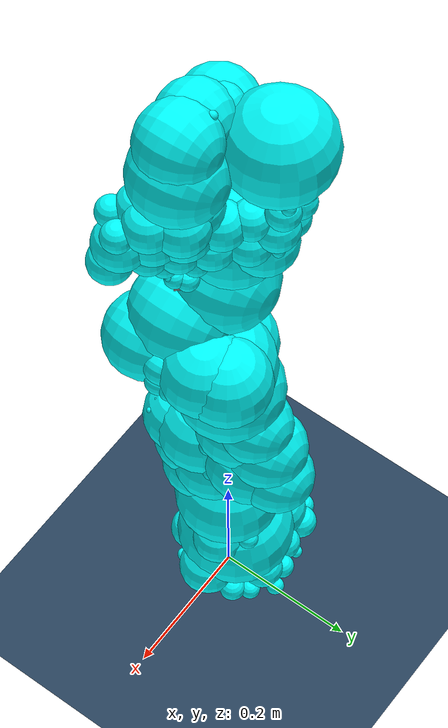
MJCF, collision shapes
<mujoco model="panda scene">
  <compiler angle="radian" meshdir="assets/" />
  <option integrator="implicitfast" />
  <size nkey="1" />
  <visual>
    <global azimuth="120" elevation="-20" />
    <headlight ambient="0.3 0.3 0.3" diffuse="0.6 0.6 0.6" specular="0 0 0" />
    <rgba haze="0.15 0.25 0.35 1" />
  </visual>
  <statistic extent="1" center="0.3 0 0.4" />
  <default>
    <default class="panda">
      <material shininess="0.25" />
      <joint range="-2.8973 2.8973" armature="0.1" damping="1" />
      <general ctrlrange="-2.8973 2.8973" forcerange="-87 87" biastype="affine" />
      <default class="finger">
        <joint type="slide" range="0 0.04" />
      </default>
      <default class="visual">
        <geom type="mesh" contype="0" conaffinity="0" group="2" />
      </default>
      <default class="collision">
        <geom type="mesh" group="3" />
        <default class="fingertip_pad_collision_1">
          <geom size="0.0085 0.004 0.0085" type="box" />
        </default>
        <default class="fingertip_pad_collision_2">
          <geom size="0.003 0.002 0.003" type="box" />
        </default>
        <default class="fingertip_pad_collision_3">
          <geom size="0.003 0.002 0.003" type="box" />
        </default>
        <default class="fingertip_pad_collision_4">
          <geom size="0.003 0.002 0.0035" type="box" />
        </default>
        <default class="fingertip_pad_collision_5">
          <geom size="0.003 0.002 0.0035" type="box" />
        </default>
      </default>
    </default>
  </default>
  <asset>
    <texture type="skybox" colorspace="auto" builtin="gradient" rgb1="0.3 0.5 0.7" rgb2="0 0 0" width="512" height="3072" />
    <texture type="2d" colorspace="auto" name="groundplane" builtin="checker" mark="edge" rgb1="0.2 0.3 0.4" rgb2="0.1 0.2 0.3" markrgb="0.8 0.8 0.8" width="300" height="300" />
    <material name="white" class="panda" />
    <material name="off_white" class="panda" rgba="0.901961 0.921569 0.929412 1" />
    <material name="black" class="panda" rgba="0.25 0.25 0.25 1" />
    <material name="green" class="panda" rgba="0 1 0 1" />
    <material name="light_blue" class="panda" rgba="0.039216 0.541176 0.780392 1" />
    <material name="groundplane" texture="groundplane" texuniform="true" texrepeat="5 5" reflectance="0.2" />
    <mesh name="link0_c" content_type="model/stl" file="link0.stl" />
    <mesh name="link1_c" content_type="model/stl" file="link1.stl" />
    <mesh name="link2_c" content_type="model/stl" file="link2.stl" />
    <mesh name="link3_c" content_type="model/stl" file="link3.stl" />
    <mesh name="link4_c" content_type="model/stl" file="link4.stl" />
    <mesh name="link5_c0" content_type="model/obj" file="link5_collision_0.obj" />
    <mesh name="link5_c1" content_type="model/obj" file="link5_collision_1.obj" />
    <mesh name="link5_c2" content_type="model/obj" file="link5_collision_2.obj" />
    <mesh name="link6_c" content_type="model/stl" file="link6.stl" />
    <mesh name="link7_c" content_type="model/stl" file="link7.stl" />
    <mesh name="hand_c" content_type="model/stl" file="hand.stl" />
    <mesh name="link0_0" content_type="model/obj" file="link0_0.obj" />
    <mesh name="link0_1" content_type="model/obj" file="link0_1.obj" />
    <mesh name="link0_2" content_type="model/obj" file="link0_2.obj" />
    <mesh name="link0_3" content_type="model/obj" file="link0_3.obj" />
    <mesh name="link0_4" content_type="model/obj" file="link0_4.obj" />
    <mesh name="link0_5" content_type="model/obj" file="link0_5.obj" />
    <mesh name="link0_7" content_type="model/obj" file="link0_7.obj" />
    <mesh name="link0_8" content_type="model/obj" file="link0_8.obj" />
    <mesh name="link0_9" content_type="model/obj" file="link0_9.obj" />
    <mesh name="link0_10" content_type="model/obj" file="link0_10.obj" />
    <mesh name="link0_11" content_type="model/obj" file="link0_11.obj" />
    <mesh name="link1" content_type="model/obj" file="link1.obj" />
    <mesh name="link2" content_type="model/obj" file="link2.obj" />
    <mesh name="link3_0" content_type="model/obj" file="link3_0.obj" />
    <mesh name="link3_1" content_type="model/obj" file="link3_1.obj" />
    <mesh name="link3_2" content_type="model/obj" file="link3_2.obj" />
    <mesh name="link3_3" content_type="model/obj" file="link3_3.obj" />
    <mesh name="link4_0" content_type="model/obj" file="link4_0.obj" />
    <mesh name="link4_1" content_type="model/obj" file="link4_1.obj" />
    <mesh name="link4_2" content_type="model/obj" file="link4_2.obj" />
    <mesh name="link4_3" content_type="model/obj" file="link4_3.obj" />
    <mesh name="link5_0" content_type="model/obj" file="link5_0.obj" />
    <mesh name="link5_1" content_type="model/obj" file="link5_1.obj" />
    <mesh name="link5_2" content_type="model/obj" file="link5_2.obj" />
    <mesh name="link6_0" content_type="model/obj" file="link6_0.obj" />
    <mesh name="link6_1" content_type="model/obj" file="link6_1.obj" />
    <mesh name="link6_2" content_type="model/obj" file="link6_2.obj" />
    <mesh name="link6_3" content_type="model/obj" file="link6_3.obj" />
    <mesh name="link6_4" content_type="model/obj" file="link6_4.obj" />
    <mesh name="link6_5" content_type="model/obj" file="link6_5.obj" />
    <mesh name="link6_6" content_type="model/obj" file="link6_6.obj" />
    <mesh name="link6_7" content_type="model/obj" file="link6_7.obj" />
    <mesh name="link6_8" content_type="model/obj" file="link6_8.obj" />
    <mesh name="link6_9" content_type="model/obj" file="link6_9.obj" />
    <mesh name="link6_10" content_type="model/obj" file="link6_10.obj" />
    <mesh name="link6_11" content_type="model/obj" file="link6_11.obj" />
    <mesh name="link6_12" content_type="model/obj" file="link6_12.obj" />
    <mesh name="link6_13" content_type="model/obj" file="link6_13.obj" />
    <mesh name="link6_14" content_type="model/obj" file="link6_14.obj" />
    <mesh name="link6_15" content_type="model/obj" file="link6_15.obj" />
    <mesh name="link6_16" content_type="model/obj" file="link6_16.obj" />
    <mesh name="link7_0" content_type="model/obj" file="link7_0.obj" />
    <mesh name="link7_1" content_type="model/obj" file="link7_1.obj" />
    <mesh name="link7_2" content_type="model/obj" file="link7_2.obj" />
    <mesh name="link7_3" content_type="model/obj" file="link7_3.obj" />
    <mesh name="link7_4" content_type="model/obj" file="link7_4.obj" />
    <mesh name="link7_5" content_type="model/obj" file="link7_5.obj" />
    <mesh name="link7_6" content_type="model/obj" file="link7_6.obj" />
    <mesh name="link7_7" content_type="model/obj" file="link7_7.obj" />
    <mesh name="hand_0" content_type="model/obj" file="hand_0.obj" />
    <mesh name="hand_1" content_type="model/obj" file="hand_1.obj" />
    <mesh name="hand_2" content_type="model/obj" file="hand_2.obj" />
    <mesh name="hand_3" content_type="model/obj" file="hand_3.obj" />
    <mesh name="hand_4" content_type="model/obj" file="hand_4.obj" />
    <mesh name="finger_0" content_type="model/obj" file="finger_0.obj" />
    <mesh name="finger_1" content_type="model/obj" file="finger_1.obj" />
  </asset>
  <worldbody>
    <geom name="floor" size="0 0 0.05" type="plane" material="groundplane" />
    <light name="top" pos="0 0 2" dir="0 0 -1" mode="trackcom" />
    <light pos="0 0 1.5" dir="0 0 -1" type="directional" />
    <body name="link0" childclass="panda">
      <inertial pos="-0.041018 -0.00014 0.049974" quat="0.00630474 0.751245 0.00741774 0.659952" mass="0.629769" diaginertia="0.00430465 0.00387984 0.00313051" />
      <geom class="visual" material="off_white" mesh="link0_0" />
      <geom class="visual" material="black" mesh="link0_1" />
      <geom class="visual" material="off_white" mesh="link0_2" />
      <geom class="visual" material="black" mesh="link0_3" />
      <geom class="visual" material="off_white" mesh="link0_4" />
      <geom class="visual" material="black" mesh="link0_5" />
      <geom class="visual" material="white" mesh="link0_7" />
      <geom class="visual" material="white" mesh="link0_8" />
      <geom class="visual" material="black" mesh="link0_9" />
      <geom class="visual" material="off_white" mesh="link0_10" />
      <geom class="visual" material="white" mesh="link0_11" />
      <geom class="collision" mesh="link0_c" contype="0" conaffinity="0" />
      <body name="link1" pos="0 0 0.333">
        <inertial pos="0.003875 0.002081 -0.04762" quat="0.711549 0.00634377 -0.0131124 0.702485" mass="4.97068" diaginertia="0.707137 0.703435 0.00852456" />
        <joint name="joint1" pos="0 0 0" axis="0 0 1" />
        <geom class="visual" material="white" mesh="link1" />
        <geom class="collision" mesh="link1_c" contype="0" conaffinity="0" />
        <body name="link2" quat="0.707107 -0.707107 0 0">
          <inertial pos="-0.003141 -0.02872 0.003495" quat="-0.168175 0.828366 -0.122878 0.520027" mass="0.646926" diaginertia="0.0310326 0.0283001 0.00273425" />
          <joint name="joint2" pos="0 0 0" axis="0 0 1" range="-1.7628 1.7628" />
          <geom class="visual" material="white" mesh="link2" />
          <geom class="collision" mesh="link2_c" contype="0" conaffinity="0" />
          <body name="link3" pos="0 -0.316 0" quat="0.707107 0.707107 0 0">
            <inertial pos="0.027518 0.039252 -0.066502" quat="0.662769 -0.00678331 0.252053 0.705096" mass="3.2286" diaginertia="0.0415014 0.0414793 0.00124635" />
            <joint name="joint3" pos="0 0 0" axis="0 0 1" />
            <geom class="visual" material="white" mesh="link3_0" />
            <geom class="visual" material="white" mesh="link3_1" />
            <geom class="visual" material="white" mesh="link3_2" />
            <geom class="visual" material="black" mesh="link3_3" />
            <geom class="collision" mesh="link3_c" contype="0" conaffinity="0" />
            <body name="link4" pos="0.0825 0 0" quat="0.707107 0.707107 0 0">
              <inertial pos="-0.05317 0.104419 0.027454" quat="0.65058 0.529822 -0.0962034 0.535518" mass="3.5879" diaginertia="0.0349596 0.0281483 0.0106201" />
              <joint name="joint4" pos="0 0 0" axis="0 0 1" range="-3.0718 -0.0698" />
              <geom class="visual" material="white" mesh="link4_0" />
              <geom class="visual" material="white" mesh="link4_1" />
              <geom class="visual" material="black" mesh="link4_2" />
              <geom class="visual" material="white" mesh="link4_3" />
              <geom class="collision" mesh="link4_c" contype="0" conaffinity="0" />
              <body name="link5" pos="-0.0825 0.384 0" quat="0.707107 -0.707107 0 0">
                <inertial pos="-0.011953 0.041065 -0.038437" quat="0.987313 -0.0121954 0.0719187 -0.141037" mass="1.22595" diaginertia="0.0367625 0.0288531 0.00803437" />
                <joint name="joint5" pos="0 0 0" axis="0 0 1" />
                <geom class="visual" material="black" mesh="link5_0" />
                <geom class="visual" material="white" mesh="link5_1" />
                <geom class="visual" material="white" mesh="link5_2" />
                <geom class="collision" mesh="link5_c0" contype="0" conaffinity="0" />
                <geom class="collision" mesh="link5_c1" contype="0" conaffinity="0" />
                <geom class="collision" mesh="link5_c2" contype="0" conaffinity="0" />
                <body name="link6" quat="0.707107 0.707107 0 0">
                  <inertial pos="0.060149 -0.014117 -0.010517" quat="0.101075 0.59332 0.0287227 0.798079" mass="1.66656" diaginertia="0.00584276 0.00431037 0.00159787" />
                  <joint name="joint6" pos="0 0 0" axis="0 0 1" range="-0.0175 3.7525" />
                  <geom class="visual" material="off_white" mesh="link6_0" />
                  <geom class="visual" material="white" mesh="link6_1" />
                  <geom class="visual" material="black" mesh="link6_2" />
                  <geom class="visual" material="white" mesh="link6_3" />
                  <geom class="visual" material="white" mesh="link6_4" />
                  <geom class="visual" material="white" mesh="link6_5" />
                  <geom class="visual" material="white" mesh="link6_6" />
                  <geom class="visual" material="light_blue" mesh="link6_7" />
                  <geom class="visual" material="light_blue" mesh="link6_8" />
                  <geom class="visual" material="black" mesh="link6_9" />
                  <geom class="visual" material="black" mesh="link6_10" />
                  <geom class="visual" material="white" mesh="link6_11" />
                  <geom class="visual" material="green" mesh="link6_12" />
                  <geom class="visual" material="white" mesh="link6_13" />
                  <geom class="visual" material="black" mesh="link6_14" />
                  <geom class="visual" material="black" mesh="link6_15" />
                  <geom class="visual" material="white" mesh="link6_16" />
                  <geom class="collision" mesh="link6_c" contype="0" conaffinity="0" />
                  <body name="link7" pos="0.088 0 0" quat="0.707107 0.707107 0 0">
                    <inertial pos="0.010517 -0.004252 0.061597" quat="0.992939 -0.0762041 0.0733595 -0.0537067" mass="0.735522" diaginertia="0.0127345 0.0101055 0.00451803" />
                    <joint name="joint7" pos="0 0 0" axis="0 0 1" />
                    <geom class="visual" material="white" mesh="link7_0" />
                    <geom class="visual" material="black" mesh="link7_1" />
                    <geom class="visual" material="black" mesh="link7_2" />
                    <geom class="visual" material="black" mesh="link7_3" />
                    <geom class="visual" material="black" mesh="link7_4" />
                    <geom class="visual" material="black" mesh="link7_5" />
                    <geom class="visual" material="black" mesh="link7_6" />
                    <geom class="visual" material="white" mesh="link7_7" />
                    <geom class="collision" mesh="link7_c" contype="0" conaffinity="0" />
                    <body name="hand" pos="0 0 0.107" quat="0.92388 0 0 -0.382683">
                      <inertial pos="-0.01 0 0.03" mass="0.73" diaginertia="0.001 0.0025 0.0017" />
                      <geom class="visual" material="off_white" mesh="hand_0" />
                      <geom class="visual" material="black" mesh="hand_1" />
                      <geom class="visual" material="black" mesh="hand_2" />
                      <geom class="visual" material="white" mesh="hand_3" />
                      <geom class="visual" material="off_white" mesh="hand_4" />
                      <geom class="collision" mesh="hand_c" contype="0" conaffinity="0" />
                      <body name="left_finger" pos="0 0 0.0584">
                        <inertial pos="0 0 0" mass="0.015" diaginertia="2.375e-06 2.375e-06 7.5e-07" />
                        <joint name="finger_joint1" class="finger" pos="0 0 0" axis="0 1 0" />
                        <geom class="visual" material="off_white" mesh="finger_0" />
                        <geom class="visual" material="black" mesh="finger_1" />
                        <geom class="collision" mesh="finger_0" contype="0" conaffinity="0" />
                        <geom class="fingertip_pad_collision_1" pos="0 0.0055 0.0445" contype="0" conaffinity="0" />
                        <geom class="fingertip_pad_collision_2" pos="0.0055 0.002 0.05" contype="0" conaffinity="0" />
                        <geom class="fingertip_pad_collision_3" pos="-0.0055 0.002 0.05" contype="0" conaffinity="0" />
                        <geom class="fingertip_pad_collision_4" pos="0.0055 0.002 0.0395" contype="0" conaffinity="0" />
                        <geom class="fingertip_pad_collision_5" pos="-0.0055 0.002 0.0395" contype="0" conaffinity="0" />
                        <geom name="spherefit_left_finger_000" type="sphere" pos="-0.0019128066 0.017753717 0.0081942324" size="0.018476961" group="3" contype="1" conaffinity="1" density="0" rgba="0 1 1 0.35" />
                        <geom name="spherefit_left_finger_001" type="sphere" pos="-0.0017043705 0.006618775 0.040830769" size="0.01345786" group="3" contype="1" conaffinity="1" density="0" rgba="0 1 1 0.35" />
                        <geom name="spherefit_left_finger_002" type="sphere" pos="0.0063103861 0.015417458 0.029133638" size="0.0036055928" group="3" contype="1" conaffinity="1" density="0" rgba="0 1 1 0.35" />
                      </body>
                      <body name="right_finger" pos="0 0 0.0584" quat="0 0 0 1">
                        <inertial pos="0 0 0" mass="0.015" diaginertia="2.375e-06 2.375e-06 7.5e-07" />
                        <joint name="finger_joint2" class="finger" pos="0 0 0" axis="0 1 0" />
                        <geom class="visual" material="off_white" mesh="finger_0" />
                        <geom class="visual" material="black" mesh="finger_1" />
                        <geom class="collision" mesh="finger_0" contype="0" conaffinity="0" />
                        <geom class="fingertip_pad_collision_1" pos="0 0.0055 0.0445" contype="0" conaffinity="0" />
                        <geom class="fingertip_pad_collision_2" pos="0.0055 0.002 0.05" contype="0" conaffinity="0" />
                        <geom class="fingertip_pad_collision_3" pos="-0.0055 0.002 0.05" contype="0" conaffinity="0" />
                        <geom class="fingertip_pad_collision_4" pos="0.0055 0.002 0.0395" contype="0" conaffinity="0" />
                        <geom class="fingertip_pad_collision_5" pos="-0.0055 0.002 0.0395" contype="0" conaffinity="0" />
                        <geom name="spherefit_right_finger_000" type="sphere" pos="0.0029284896 0.017829096 0.016561622" size="0.017643543" group="3" contype="1" conaffinity="1" density="0" rgba="0 1 1 0.35" />
                        <geom name="spherefit_right_finger_001" type="sphere" pos="-0.00032536761 0.0074887034 0.045172963" size="0.014439725" group="3" contype="1" conaffinity="1" density="0" rgba="0 1 1 0.35" />
                      </body>
                      <geom name="spherefit_hand_000" type="sphere" pos="4.2554224e-05 -0.0045953942 0.0087971194" size="0.035278067" group="3" contype="1" conaffinity="1" density="0" rgba="0 1 1 0.35" />
                      <geom name="spherefit_hand_001" type="sphere" pos="-0.00090494909 -0.047265828 0.0063310405" size="0.0301148" group="3" contype="1" conaffinity="1" density="0" rgba="0 1 1 0.35" />
                      <geom name="spherefit_hand_002" type="sphere" pos="-0.00047383495 0.029957268 0.013240869" size="0.033073213" group="3" contype="1" conaffinity="1" density="0" rgba="0 1 1 0.35" />
                      <geom name="spherefit_hand_003" type="sphere" pos="0.00056539057 0.0015622218 0.045270067" size="0.025842227" group="3" contype="1" conaffinity="1" density="0" rgba="0 1 1 0.35" />
                      <geom name="spherefit_hand_004" type="sphere" pos="2.8088714e-05 0.036267631 0.045403514" size="0.024523821" group="3" contype="1" conaffinity="1" density="0" rgba="0 1 1 0.35" />
                      <geom name="spherefit_hand_005" type="sphere" pos="-0.0011512742 -0.035970643 0.044849522" size="0.028644845" group="3" contype="1" conaffinity="1" density="0" rgba="0 1 1 0.35" />
                      <geom name="spherefit_hand_006" type="sphere" pos="-0.0014082143 -0.080503069 0.0033812008" size="0.024942888" group="3" contype="1" conaffinity="1" density="0" rgba="0 1 1 0.35" />
                      <geom name="spherefit_hand_007" type="sphere" pos="0.00052496768 0.078676686 0.04726316" size="0.028009811" group="3" contype="1" conaffinity="1" density="0" rgba="0 1 1 0.35" />
                      <geom name="spherefit_hand_008" type="sphere" pos="-0.00033337908 0.066422574 0.016432859" size="0.033598211" group="3" contype="1" conaffinity="1" density="0" rgba="0 1 1 0.35" />
                      <geom name="spherefit_hand_009" type="sphere" pos="0.0019148043 -0.078427479 0.042974185" size="0.027338142" group="3" contype="1" conaffinity="1" density="0" rgba="0 1 1 0.35" />
                    </body>
                    <geom name="spherefit_link7_000" type="sphere" pos="-0.016097909 -0.006865026 0.079115868" size="0.037093416" group="3" contype="1" conaffinity="1" density="0" rgba="0 1 1 0.35" />
                    <geom name="spherefit_link7_001" type="sphere" pos="-0.007178097 0.016663169 0.077393562" size="0.032667939" group="3" contype="1" conaffinity="1" density="0" rgba="0 1 1 0.35" />
                    <geom name="spherefit_link7_002" type="sphere" pos="0.012502712 -0.013632286 0.080736779" size="0.034134645" group="3" contype="1" conaffinity="1" density="0" rgba="0 1 1 0.35" />
                    <geom name="spherefit_link7_003" type="sphere" pos="0.018239673 0.038669344 0.079957023" size="0.029683644" group="3" contype="1" conaffinity="1" density="0" rgba="0 1 1 0.35" />
                    <geom name="spherefit_link7_004" type="sphere" pos="0.035013754 0.014798115 0.077342816" size="0.030786168" group="3" contype="1" conaffinity="1" density="0" rgba="0 1 1 0.35" />
                    <geom name="spherefit_link7_005" type="sphere" pos="0.039254393 0.062847503 0.084891766" size="0.019440325" group="3" contype="1" conaffinity="1" density="0" rgba="0 1 1 0.35" />
                    <geom name="spherefit_link7_006" type="sphere" pos="0.062127583 0.03735197 0.084898151" size="0.019563915" group="3" contype="1" conaffinity="1" density="0" rgba="0 1 1 0.35" />
                    <geom name="spherefit_link7_007" type="sphere" pos="-0.0025139162 -0.039290734 0.055943158" size="0.0050128298" group="3" contype="1" conaffinity="1" density="0" rgba="0 1 1 0.35" />
                  </body>
                  <geom name="spherefit_link6_000" type="sphere" pos="0.03822498 -0.0082287528 0.014150189" size="0.045892511" group="3" contype="1" conaffinity="1" density="0" rgba="0 1 1 0.35" />
                  <geom name="spherefit_link6_001" type="sphere" pos="-0.0050230902 0.0003271086 0.01476419" size="0.049981065" group="3" contype="1" conaffinity="1" density="0" rgba="0 1 1 0.35" />
                  <geom name="spherefit_link6_002" type="sphere" pos="0.0091286656 0.030199062 -0.0014219694" size="0.026185887" group="3" contype="1" conaffinity="1" density="0" rgba="0 1 1 0.35" />
                  <geom name="spherefit_link6_003" type="sphere" pos="0.08759097 -0.0090231877 -0.00086985953" size="0.058864065" group="3" contype="1" conaffinity="1" density="0" rgba="0 1 1 0.35" />
                  <geom name="spherefit_link6_004" type="sphere" pos="0.11272135 0.044917013 -0.0080659715" size="0.015588835" group="3" contype="1" conaffinity="1" density="0" rgba="0 1 1 0.35" />
                  <geom name="spherefit_link6_005" type="sphere" pos="0.040295169 0.029084528 0.011513891" size="0.046655387" group="3" contype="1" conaffinity="1" density="0" rgba="0 1 1 0.35" />
                  <geom name="spherefit_link6_006" type="sphere" pos="0.081220455 0.03600819 0.0025035543" size="0.050764699" group="3" contype="1" conaffinity="1" density="0" rgba="0 1 1 0.35" />
                  <geom name="spherefit_link6_007" type="sphere" pos="0.018010911 -0.034025904 -0.011411337" size="0.017491234" group="3" contype="1" conaffinity="1" density="0" rgba="0 1 1 0.35" />
                  <geom name="spherefit_link6_008" type="sphere" pos="0.10408486 0.058991391 0.014665773" size="0.012520738" group="3" contype="1" conaffinity="1" density="0" rgba="0 1 1 0.35" />
                  <geom name="spherefit_link6_009" type="sphere" pos="0.088023335 -0.021856597 0.034234475" size="0.0051783887" group="3" contype="1" conaffinity="1" density="0" rgba="0 1 1 0.35" />
                  <geom name="spherefit_link6_010" type="sphere" pos="0.0014345967 -0.037596829 -0.015677901" size="0.0084434235" group="3" contype="1" conaffinity="1" density="0" rgba="0 1 1 0.35" />
                  <geom name="spherefit_link6_011" type="sphere" pos="0.064512298 -0.035540108 -0.030158794" size="0.0097178146" group="3" contype="1" conaffinity="1" density="0" rgba="0 1 1 0.35" />
                  <geom name="spherefit_link6_012" type="sphere" pos="0.046932567 -0.039275695 0.040192835" size="0.0076264082" group="3" contype="1" conaffinity="1" density="0" rgba="0 1 1 0.35" />
                  <geom name="spherefit_link6_013" type="sphere" pos="0.045682184 -0.041775063 -0.024750009" size="0.015150618" group="3" contype="1" conaffinity="1" density="0" rgba="0 1 1 0.35" />
                  <geom name="spherefit_link6_014" type="sphere" pos="-0.02126513 0.034240209 0.004714686" size="0.0073546115" group="3" contype="1" conaffinity="1" density="0" rgba="0 1 1 0.35" />
                  <geom name="spherefit_link6_015" type="sphere" pos="0.097284131 -0.047246482 0.0275463" size="0.0034258184" group="3" contype="1" conaffinity="1" density="0" rgba="0 1 1 0.35" />
                  <geom name="spherefit_link6_016" type="sphere" pos="-0.020098684 -0.041344393 -0.013298669" size="0.0036620724" group="3" contype="1" conaffinity="1" density="0" rgba="0 1 1 0.35" />
                  <geom name="spherefit_link6_017" type="sphere" pos="0.049812101 0.067238592 -0.019057361" size="0.0060584345" group="3" contype="1" conaffinity="1" density="0" rgba="0 1 1 0.35" />
                </body>
                <geom name="spherefit_link5_000" type="sphere" pos="-0.00093405723 0.070087552 0.0011004207" size="0.068507157" group="3" contype="1" conaffinity="1" density="0" rgba="0 1 1 0.35" />
                <geom name="spherefit_link5_001" type="sphere" pos="0.0018190596 0.010052774 -0.21402232" size="0.062071901" group="3" contype="1" conaffinity="1" density="0" rgba="0 1 1 0.35" />
                <geom name="spherefit_link5_002" type="sphere" pos="0.0020265537 0.05331767 -0.18465982" size="0.04281164" group="3" contype="1" conaffinity="1" density="0" rgba="0 1 1 0.35" />
                <geom name="spherefit_link5_003" type="sphere" pos="-0.028676461 0.026691031 0.0094981957" size="0.01215815" group="3" contype="1" conaffinity="1" density="0" rgba="0 1 1 0.35" />
                <geom name="spherefit_link5_004" type="sphere" pos="-0.013923307 0.075971924 -0.13777161" size="0.026681924" group="3" contype="1" conaffinity="1" density="0" rgba="0 1 1 0.35" />
                <geom name="spherefit_link5_005" type="sphere" pos="0.0048374836 0.030375535 -0.24395189" size="0.0095336987" group="3" contype="1" conaffinity="1" density="0" rgba="0 1 1 0.35" />
                <geom name="spherefit_link5_006" type="sphere" pos="-0.039088637 -0.014978009 -0.24618404" size="0.012492009" group="3" contype="1" conaffinity="1" density="0" rgba="0 1 1 0.35" />
                <geom name="spherefit_link5_007" type="sphere" pos="0.035174415 0.011959727 -0.23889229" size="0.0090212207" group="3" contype="1" conaffinity="1" density="0" rgba="0 1 1 0.35" />
                <geom name="spherefit_link5_008" type="sphere" pos="0.016652958 0.098187104 0.014018454" size="0.016343366" group="3" contype="1" conaffinity="1" density="0" rgba="0 1 1 0.35" />
                <geom name="spherefit_link5_009" type="sphere" pos="0.02805265 0.023177782 -0.0086535811" size="0.0071652015" group="3" contype="1" conaffinity="1" density="0" rgba="0 1 1 0.35" />
                <geom name="spherefit_link5_010" type="sphere" pos="-0.019721776 -0.018726487 -0.23367281" size="0.032758564" group="3" contype="1" conaffinity="1" density="0" rgba="0 1 1 0.35" />
                <geom name="spherefit_link5_011" type="sphere" pos="-0.00026890528 -0.029277826 -0.21551476" size="0.016896965" group="3" contype="1" conaffinity="1" density="0" rgba="0 1 1 0.35" />
                <geom name="spherefit_link5_012" type="sphere" pos="0.030309688 0.03889047 0.0027092937" size="0.012420507" group="3" contype="1" conaffinity="1" density="0" rgba="0 1 1 0.35" />
                <geom name="spherefit_link5_013" type="sphere" pos="0.020590505 0.076803334 -0.15172918" size="0.0097377831" group="3" contype="1" conaffinity="1" density="0" rgba="0 1 1 0.35" />
                <geom name="spherefit_link5_014" type="sphere" pos="0.005726981 0.075890392 -0.029215747" size="0.013803534" group="3" contype="1" conaffinity="1" density="0" rgba="0 1 1 0.35" />
                <geom name="spherefit_link5_015" type="sphere" pos="0.035760313 0.025417639 -0.015761994" size="0.0061726039" group="3" contype="1" conaffinity="1" density="0" rgba="0 1 1 0.35" />
                <geom name="spherefit_link5_016" type="sphere" pos="-0.01606811 0.099287577 -0.049973395" size="0.0095423814" group="3" contype="1" conaffinity="1" density="0" rgba="0 1 1 0.35" />
                <geom name="spherefit_link5_017" type="sphere" pos="0.021838589 0.062500559 -0.14427331" size="0.0099206287" group="3" contype="1" conaffinity="1" density="0" rgba="0 1 1 0.35" />
                <geom name="spherefit_link5_018" type="sphere" pos="0.014246128 0.087919898 -0.088857703" size="0.020962803" group="3" contype="1" conaffinity="1" density="0" rgba="0 1 1 0.35" />
                <geom name="spherefit_link5_019" type="sphere" pos="0.021124002 0.02747784 -0.038989998" size="0.0084915273" group="3" contype="1" conaffinity="1" density="0" rgba="0 1 1 0.35" />
                <geom name="spherefit_link5_020" type="sphere" pos="0.0236976 0.023551565 0.035794877" size="0.005667951" group="3" contype="1" conaffinity="1" density="0" rgba="0 1 1 0.35" />
                <geom name="spherefit_link5_021" type="sphere" pos="0.0068049422 0.1101286 -0.055809613" size="0.0043731881" group="3" contype="1" conaffinity="1" density="0" rgba="0 1 1 0.35" />
                <geom name="spherefit_link5_022" type="sphere" pos="0.012887429 0.099755831 -0.05516573" size="0.0081081968" group="3" contype="1" conaffinity="1" density="0" rgba="0 1 1 0.35" />
                <geom name="spherefit_link5_023" type="sphere" pos="0.028865814 -0.012302139 -0.23607925" size="0.025113149" group="3" contype="1" conaffinity="1" density="0" rgba="0 1 1 0.35" />
                <geom name="spherefit_link5_024" type="sphere" pos="-0.039823025 0.020289777 -0.25097707" size="0.0090714386" group="3" contype="1" conaffinity="1" density="0" rgba="0 1 1 0.35" />
                <geom name="spherefit_link5_025" type="sphere" pos="-0.0070795445 -0.046872474 -0.24545859" size="0.0052402285" group="3" contype="1" conaffinity="1" density="0" rgba="0 1 1 0.35" />
                <geom name="spherefit_link5_026" type="sphere" pos="-0.01745085 0.088543333 -0.10253382" size="0.02040663" group="3" contype="1" conaffinity="1" density="0" rgba="0 1 1 0.35" />
                <geom name="spherefit_link5_027" type="sphere" pos="-0.01460222 0.091473408 -0.069509283" size="0.020437714" group="3" contype="1" conaffinity="1" density="0" rgba="0 1 1 0.35" />
                <geom name="spherefit_link5_028" type="sphere" pos="-0.037853494 -0.018931353 -0.24807408" size="0.01356326" group="3" contype="1" conaffinity="1" density="0" rgba="0 1 1 0.35" />
                <geom name="spherefit_link5_029" type="sphere" pos="0.0216466 0.099761382 -0.061911039" size="0.0086288881" group="3" contype="1" conaffinity="1" density="0" rgba="0 1 1 0.35" />
                <geom name="spherefit_link5_030" type="sphere" pos="0.0083048791 0.10227837 -0.055067874" size="0.0050772713" group="3" contype="1" conaffinity="1" density="0" rgba="0 1 1 0.35" />
                <geom name="spherefit_link5_031" type="sphere" pos="-0.017346565 0.027786653 0.040088758" size="0.0037728953" group="3" contype="1" conaffinity="1" density="0" rgba="0 1 1 0.35" />
                <geom name="spherefit_link5_032" type="sphere" pos="0.01240485 0.078550607 -0.12822607" size="0.027941179" group="3" contype="1" conaffinity="1" density="0" rgba="0 1 1 0.35" />
                <geom name="spherefit_link5_033" type="sphere" pos="0.026171336 -0.040368836 -0.25030339" size="0.0094021782" group="3" contype="1" conaffinity="1" density="0" rgba="0 1 1 0.35" />
                <geom name="spherefit_link5_034" type="sphere" pos="0.01752818 0.0848497 -0.16027278" size="0.0081231017" group="3" contype="1" conaffinity="1" density="0" rgba="0 1 1 0.35" />
                <geom name="spherefit_link5_035" type="sphere" pos="-0.024130711 0.028059419 -0.034365002" size="0.011835192" group="3" contype="1" conaffinity="1" density="0" rgba="0 1 1 0.35" />
              </body>
              <geom name="spherefit_link4_000" type="sphere" pos="-0.030865811 0.036599405 0.027947022" size="0.068593636" group="3" contype="1" conaffinity="1" density="0" rgba="0 1 1 0.35" />
              <geom name="spherefit_link4_001" type="sphere" pos="0.0012455257 0.0014909616 0.056338195" size="0.058042735" group="3" contype="1" conaffinity="1" density="0" rgba="0 1 1 0.35" />
              <geom name="spherefit_link4_002" type="sphere" pos="-0.079169407 0.07809899 0.003165622" size="0.070613079" group="3" contype="1" conaffinity="1" density="0" rgba="0 1 1 0.35" />
              <geom name="spherefit_link4_003" type="sphere" pos="-0.0038042581 -0.016360749 0.022731049" size="0.041739799" group="3" contype="1" conaffinity="1" density="0" rgba="0 1 1 0.35" />
              <geom name="spherefit_link4_004" type="sphere" pos="-0.044407636 0.10749961 0.021802692" size="0.018219709" group="3" contype="1" conaffinity="1" density="0" rgba="0 1 1 0.35" />
              <geom name="spherefit_link4_005" type="sphere" pos="0.028795728 0.0084937047 0.01266761" size="0.025425958" group="3" contype="1" conaffinity="1" density="0" rgba="0 1 1 0.35" />
              <geom name="spherefit_link4_006" type="sphere" pos="-0.036660276 0.098211117 -0.018080404" size="0.015098751" group="3" contype="1" conaffinity="1" density="0" rgba="0 1 1 0.35" />
              <geom name="spherefit_link4_007" type="sphere" pos="-0.08024247 0.010938291 -0.0066023739" size="0.012162095" group="3" contype="1" conaffinity="1" density="0" rgba="0 1 1 0.35" />
              <geom name="spherefit_link4_008" type="sphere" pos="-0.058630627 -0.013127284 -0.0080975881" size="0.0084375227" group="3" contype="1" conaffinity="1" density="0" rgba="0 1 1 0.35" />
              <geom name="spherefit_link4_009" type="sphere" pos="0.03779459 -0.016461156 0.013520165" size="0.017785247" group="3" contype="1" conaffinity="1" density="0" rgba="0 1 1 0.35" />
              <geom name="spherefit_link4_010" type="sphere" pos="-0.039919175 -0.033644795 -0.00073442701" size="0.0046092086" group="3" contype="1" conaffinity="1" density="0" rgba="0 1 1 0.35" />
            </body>
            <geom name="spherefit_link3_000" type="sphere" pos="0.050438847 0.026531011 -0.030938966" size="0.071998857" group="3" contype="1" conaffinity="1" density="0" rgba="0 1 1 0.35" />
            <geom name="spherefit_link3_001" type="sphere" pos="0.029458703 0.022693731 -0.072481282" size="0.052842405" group="3" contype="1" conaffinity="1" density="0" rgba="0 1 1 0.35" />
            <geom name="spherefit_link3_002" type="sphere" pos="0.080293261 0.059814464 -6.2818886e-05" size="0.056701835" group="3" contype="1" conaffinity="1" density="0" rgba="0 1 1 0.35" />
            <geom name="spherefit_link3_003" type="sphere" pos="-0.0025434655 0.0018384911 -0.071548469" size="0.06264995" group="3" contype="1" conaffinity="1" density="0" rgba="0 1 1 0.35" />
            <geom name="spherefit_link3_004" type="sphere" pos="-0.02040023 -0.027741548 -0.063954361" size="0.011541793" group="3" contype="1" conaffinity="1" density="0" rgba="0 1 1 0.35" />
            <geom name="spherefit_link3_005" type="sphere" pos="0.087988384 0.032768875 0.0052485717" size="0.057034638" group="3" contype="1" conaffinity="1" density="0" rgba="0 1 1 0.35" />
            <geom name="spherefit_link3_006" type="sphere" pos="0.035826169 -0.0059348759 -0.085506216" size="0.038014539" group="3" contype="1" conaffinity="1" density="0" rgba="0 1 1 0.35" />
            <geom name="spherefit_link3_007" type="sphere" pos="0.048172534 0.0007452562 0.030018505" size="0.012781035" group="3" contype="1" conaffinity="1" density="0" rgba="0 1 1 0.35" />
            <geom name="spherefit_link3_008" type="sphere" pos="0.0038044753 -0.0091500422 -0.026501097" size="0.020527489" group="3" contype="1" conaffinity="1" density="0" rgba="0 1 1 0.35" />
            <geom name="spherefit_link3_009" type="sphere" pos="-0.027772894 0.00025321191 -0.030362004" size="0.0061202268" group="3" contype="1" conaffinity="1" density="0" rgba="0 1 1 0.35" />
            <geom name="spherefit_link3_010" type="sphere" pos="-0.04264551 -0.0092822909 -0.1073323" size="0.013610075" group="3" contype="1" conaffinity="1" density="0" rgba="0 1 1 0.35" />
            <geom name="spherefit_link3_011" type="sphere" pos="-0.023810165 0.032279588 -0.11158334" size="0.0072113215" group="3" contype="1" conaffinity="1" density="0" rgba="0 1 1 0.35" />
            <geom name="spherefit_link3_012" type="sphere" pos="0.04084691 -0.024356052 -0.10727189" size="0.0094163064" group="3" contype="1" conaffinity="1" density="0" rgba="0 1 1 0.35" />
            <geom name="spherefit_link3_013" type="sphere" pos="0.021263769 -0.041634649 -0.110642" size="0.013073501" group="3" contype="1" conaffinity="1" density="0" rgba="0 1 1 0.35" />
            <geom name="spherefit_link3_014" type="sphere" pos="-0.036943264 0.018851135 -0.11099765" size="0.012341901" group="3" contype="1" conaffinity="1" density="0" rgba="0 1 1 0.35" />
            <geom name="spherefit_link3_015" type="sphere" pos="-0.015526754 -0.049571216 -0.10793135" size="0.0036686745" group="3" contype="1" conaffinity="1" density="0" rgba="0 1 1 0.35" />
            <geom name="spherefit_link3_016" type="sphere" pos="0.10790204 -0.0018004663 0.010194682" size="0.0056584976" group="3" contype="1" conaffinity="1" density="0" rgba="0 1 1 0.35" />
            <geom name="spherefit_link3_017" type="sphere" pos="0.11909424 0.0010746714 0.0006464058" size="0.0054414552" group="3" contype="1" conaffinity="1" density="0" rgba="0 1 1 0.35" />
            <geom name="spherefit_link3_018" type="sphere" pos="0.12390024 0.0054154312 -0.016210565" size="0.012964026" group="3" contype="1" conaffinity="1" density="0" rgba="0 1 1 0.35" />
            <geom name="spherefit_link3_019" type="sphere" pos="-0.014736214 0.039354108 -0.10884102" size="0.016725315" group="3" contype="1" conaffinity="1" density="0" rgba="0 1 1 0.35" />
            <geom name="spherefit_link3_020" type="sphere" pos="-0.0041540177 -0.049401462 -0.11408798" size="0.0051996238" group="3" contype="1" conaffinity="1" density="0" rgba="0 1 1 0.35" />
            <geom name="spherefit_link3_021" type="sphere" pos="0.070303515 0.0015902979 0.024383822" size="0.0087219235" group="3" contype="1" conaffinity="1" density="0" rgba="0 1 1 0.35" />
            <geom name="spherefit_link3_022" type="sphere" pos="0.047458988 -0.027460812 -0.095568791" size="0.011743008" group="3" contype="1" conaffinity="1" density="0" rgba="0 1 1 0.35" />
            <geom name="spherefit_link3_023" type="sphere" pos="-0.027901223 -0.028760364 -0.1076121" size="0.015209543" group="3" contype="1" conaffinity="1" density="0" rgba="0 1 1 0.35" />
            <geom name="spherefit_link3_024" type="sphere" pos="0.092129268 0.0029017434 0.040314652" size="0.0039159274" group="3" contype="1" conaffinity="1" density="0" rgba="0 1 1 0.35" />
            <geom name="spherefit_link3_025" type="sphere" pos="0.11152188 -0.0056982478 -0.013459339" size="0.0035295563" group="3" contype="1" conaffinity="1" density="0" rgba="0 1 1 0.35" />
            <geom name="spherefit_link3_026" type="sphere" pos="-0.039444096 -0.01444899 -0.10984983" size="0.012350724" group="3" contype="1" conaffinity="1" density="0" rgba="0 1 1 0.35" />
          </body>
          <geom name="spherefit_link2_000" type="sphere" pos="-0.03343489 0.018576361 0.0051464085" size="0.012836586" group="3" contype="1" conaffinity="1" density="0" rgba="0 1 1 0.35" />
          <geom name="spherefit_link2_001" type="sphere" pos="-0.0028333375 -0.044993091 0.060327653" size="0.05588961" group="3" contype="1" conaffinity="1" density="0" rgba="0 1 1 0.35" />
          <geom name="spherefit_link2_002" type="sphere" pos="-0.0013378798 -0.14049478 0.0035680879" size="0.072787449" group="3" contype="1" conaffinity="1" density="0" rgba="0 1 1 0.35" />
          <geom name="spherefit_link2_003" type="sphere" pos="0.00098720612 0.0019947845 0.079663537" size="0.051800039" group="3" contype="1" conaffinity="1" density="0" rgba="0 1 1 0.35" />
          <geom name="spherefit_link2_004" type="sphere" pos="0.0018983267 -0.0011614246 0.038959432" size="0.062676668" group="3" contype="1" conaffinity="1" density="0" rgba="0 1 1 0.35" />
          <geom name="spherefit_link2_005" type="sphere" pos="0.0013456515 -0.091671206 0.042002421" size="0.053248946" group="3" contype="1" conaffinity="1" density="0" rgba="0 1 1 0.35" />
          <geom name="spherefit_link2_006" type="sphere" pos="-0.0007620416 -0.070051417 0.020671085" size="0.06146317" group="3" contype="1" conaffinity="1" density="0" rgba="0 1 1 0.35" />
          <geom name="spherefit_link2_007" type="sphere" pos="0.037302088 -0.036244936 -0.0042761639" size="0.012870772" group="3" contype="1" conaffinity="1" density="0" rgba="0 1 1 0.35" />
          <geom name="spherefit_link2_008" type="sphere" pos="-0.049048081 -0.0095060514 0.0019142329" size="0.0074265786" group="3" contype="1" conaffinity="1" density="0" rgba="0 1 1 0.35" />
          <geom name="spherefit_link2_009" type="sphere" pos="-0.040116228 -0.029977415 0.00016828805" size="0.015670503" group="3" contype="1" conaffinity="1" density="0" rgba="0 1 1 0.35" />
        </body>
        <geom name="spherefit_link1_000" type="sphere" pos="0.023582235 -0.015310721 -0.17193855" size="0.021727242" group="3" contype="1" conaffinity="1" density="0" rgba="0 1 1 0.35" />
        <geom name="spherefit_link1_001" type="sphere" pos="-0.00045314705 -0.022015017 -0.062988341" size="0.060039755" group="3" contype="1" conaffinity="1" density="0" rgba="0 1 1 0.35" />
        <geom name="spherefit_link1_002" type="sphere" pos="-0.00092057092 -0.05871626 -0.043434959" size="0.054410689" group="3" contype="1" conaffinity="1" density="0" rgba="0 1 1 0.35" />
        <geom name="spherefit_link1_003" type="sphere" pos="-0.00046156015 -0.040361926 0.00039203651" size="0.064575069" group="3" contype="1" conaffinity="1" density="0" rgba="0 1 1 0.35" />
        <geom name="spherefit_link1_004" type="sphere" pos="-0.0017536917 -0.0016616413 -0.13801391" size="0.073729023" group="3" contype="1" conaffinity="1" density="0" rgba="0 1 1 0.35" />
        <geom name="spherefit_link1_005" type="sphere" pos="0.0017841128 -0.040619224 -0.083814435" size="0.05709403" group="3" contype="1" conaffinity="1" density="0" rgba="0 1 1 0.35" />
        <geom name="spherefit_link1_006" type="sphere" pos="-0.00092837564 -0.075628452 -0.0020788196" size="0.054902501" group="3" contype="1" conaffinity="1" density="0" rgba="0 1 1 0.35" />
        <geom name="spherefit_link1_007" type="sphere" pos="-0.0077188574 0.036293581 -0.14777456" size="0.020138299" group="3" contype="1" conaffinity="1" density="0" rgba="0 1 1 0.35" />
        <geom name="spherefit_link1_008" type="sphere" pos="-0.042897549 0.012104793 -0.033606362" size="0.0055373535" group="3" contype="1" conaffinity="1" density="0" rgba="0 1 1 0.35" />
        <geom name="spherefit_link1_009" type="sphere" pos="0.022785777 -0.073522314 -0.12822376" size="0.0034272419" group="3" contype="1" conaffinity="1" density="0" rgba="0 1 1 0.35" />
        <geom name="spherefit_link1_010" type="sphere" pos="0.020167075 -0.10198374 0.035525959" size="0.0039438731" group="3" contype="1" conaffinity="1" density="0" rgba="0 1 1 0.35" />
        <geom name="spherefit_link1_011" type="sphere" pos="0.038435202 0.0015229599 -0.021949226" size="0.0129252" group="3" contype="1" conaffinity="1" density="0" rgba="0 1 1 0.35" />
        <geom name="spherefit_link1_012" type="sphere" pos="-0.041025665 0.0014777102 -0.032504473" size="0.010583846" group="3" contype="1" conaffinity="1" density="0" rgba="0 1 1 0.35" />
        <geom name="spherefit_link1_013" type="sphere" pos="-0.019466996 0.017470306 -0.18804613" size="0.0045536095" group="3" contype="1" conaffinity="1" density="0" rgba="0 1 1 0.35" />
        <geom name="spherefit_link1_014" type="sphere" pos="0.035856955 -0.10371017 0.026951527" size="0.00374092" group="3" contype="1" conaffinity="1" density="0" rgba="0 1 1 0.35" />
        <geom name="spherefit_link1_015" type="sphere" pos="0.049713772 0.010318941 -0.18423398" size="0.0054943901" group="3" contype="1" conaffinity="1" density="0" rgba="0 1 1 0.35" />
        <geom name="spherefit_link1_016" type="sphere" pos="-0.0071178721 -0.081043154 -0.12220071" size="0.0034522773" group="3" contype="1" conaffinity="1" density="0" rgba="0 1 1 0.35" />
      </body>
      <geom name="spherefit_link0_000" type="sphere" pos="0.015946474 0.045353793 0.077049993" size="0.019298984" group="3" contype="1" conaffinity="1" density="0" rgba="0 1 1 0.35" />
      <geom name="spherefit_link0_001" type="sphere" pos="-0.018739769 -0.0011133617 0.06879615" size="0.083458506" group="3" contype="1" conaffinity="1" density="0" rgba="0 1 1 0.35" />
      <geom name="spherefit_link0_002" type="sphere" pos="-0.087505385 0.017578954 0.039657988" size="0.045619313" group="3" contype="1" conaffinity="1" density="0" rgba="0 1 1 0.35" />
      <geom name="spherefit_link0_003" type="sphere" pos="0.038879573 -0.0068426081 0.030316472" size="0.041802924" group="3" contype="1" conaffinity="1" density="0" rgba="0 1 1 0.35" />
      <geom name="spherefit_link0_004" type="sphere" pos="0.029102949 0.0047966647 0.11233333" size="0.036402445" group="3" contype="1" conaffinity="1" density="0" rgba="0 1 1 0.35" />
      <geom name="spherefit_link0_005" type="sphere" pos="0.00072488893 -0.063577861 0.021959685" size="0.031884816" group="3" contype="1" conaffinity="1" density="0" rgba="0 1 1 0.35" />
      <geom name="spherefit_link0_006" type="sphere" pos="-0.004268697 0.05681238 0.028000774" size="0.029424716" group="3" contype="1" conaffinity="1" density="0" rgba="0 1 1 0.35" />
      <geom name="spherefit_link0_007" type="sphere" pos="-0.092584044 -0.03741581 0.030548658" size="0.040605884" group="3" contype="1" conaffinity="1" density="0" rgba="0 1 1 0.35" />
      <geom name="spherefit_link0_008" type="sphere" pos="-0.049487621 -0.051822428 0.040275432" size="0.032462377" group="3" contype="1" conaffinity="1" density="0" rgba="0 1 1 0.35" />
      <geom name="spherefit_link0_009" type="sphere" pos="-0.057683002 0.055860981 0.022100909" size="0.024335725" group="3" contype="1" conaffinity="1" density="0" rgba="0 1 1 0.35" />
      <geom name="spherefit_link0_010" type="sphere" pos="-0.030706709 -0.07448823 0.012042834" size="0.016676828" group="3" contype="1" conaffinity="1" density="0" rgba="0 1 1 0.35" />
      <geom name="spherefit_link0_011" type="sphere" pos="0.041508734 0.037755109 0.013953114" size="0.018444512" group="3" contype="1" conaffinity="1" density="0" rgba="0 1 1 0.35" />
      <geom name="spherefit_link0_012" type="sphere" pos="-0.13026893 -0.025701696 0.014718105" size="0.016270565" group="3" contype="1" conaffinity="1" density="0" rgba="0 1 1 0.35" />
      <geom name="spherefit_link0_013" type="sphere" pos="-0.019003902 -0.046591435 0.12189225" size="0.012504211" group="3" contype="1" conaffinity="1" density="0" rgba="0 1 1 0.35" />
      <geom name="spherefit_link0_014" type="sphere" pos="-0.043457191 -0.058103342 0.07753396" size="0.01218338" group="3" contype="1" conaffinity="1" density="0" rgba="0 1 1 0.35" />
      <geom name="spherefit_link0_015" type="sphere" pos="-0.14104453 -0.033893213 0.0082772356" size="0.0075076078" group="3" contype="1" conaffinity="1" density="0" rgba="0 1 1 0.35" />
      <geom name="spherefit_link0_016" type="sphere" pos="0.037383553 -0.052123379 0.007335803" size="0.0095646083" group="3" contype="1" conaffinity="1" density="0" rgba="0 1 1 0.35" />
      <geom name="spherefit_link0_017" type="sphere" pos="-0.12817509 -0.057241559 0.0086526498" size="0.011337718" group="3" contype="1" conaffinity="1" density="0" rgba="0 1 1 0.35" />
      <geom name="spherefit_link0_018" type="sphere" pos="-0.12533313 0.039813444 0.015564094" size="0.017671285" group="3" contype="1" conaffinity="1" density="0" rgba="0 1 1 0.35" />
      <geom name="spherefit_link0_019" type="sphere" pos="-0.062817015 0.074300848 0.0068914508" size="0.0093821017" group="3" contype="1" conaffinity="1" density="0" rgba="0 1 1 0.35" />
      <geom name="spherefit_link0_020" type="sphere" pos="-0.10161459 0.053401694 0.017235171" size="0.024200602" group="3" contype="1" conaffinity="1" density="0" rgba="0 1 1 0.35" />
      <geom name="spherefit_link0_021" type="sphere" pos="0.026561148 0.058145504 0.010321743" size="0.014386454" group="3" contype="1" conaffinity="1" density="0" rgba="0 1 1 0.35" />
      <geom name="spherefit_link0_022" type="sphere" pos="0.018736489 -0.047363527 0.1269388" size="0.0050270408" group="3" contype="1" conaffinity="1" density="0" rgba="0 1 1 0.35" />
      <geom name="spherefit_link0_023" type="sphere" pos="0.031808831 -0.03198123 0.12734365" size="0.015236125" group="3" contype="1" conaffinity="1" density="0" rgba="0 1 1 0.35" />
      <geom name="spherefit_link0_024" type="sphere" pos="-0.012187243 0.050874107 0.13577656" size="0.0045568082" group="3" contype="1" conaffinity="1" density="0" rgba="0 1 1 0.35" />
      <geom name="spherefit_link0_025" type="sphere" pos="0.013796808 0.044346903 0.12864964" size="0.014271358" group="3" contype="1" conaffinity="1" density="0" rgba="0 1 1 0.35" />
      <geom name="spherefit_link0_026" type="sphere" pos="-0.13585509 0.0084853498 0.013225213" size="0.015256936" group="3" contype="1" conaffinity="1" density="0" rgba="0 1 1 0.35" />
      <geom name="spherefit_link0_027" type="sphere" pos="-0.14391719 0.027119955 0.0065056728" size="0.008840153" group="3" contype="1" conaffinity="1" density="0" rgba="0 1 1 0.35" />
      <geom name="spherefit_link0_028" type="sphere" pos="-0.052736547 -0.066374049 0.0072647161" size="0.0071353852" group="3" contype="1" conaffinity="1" density="0" rgba="0 1 1 0.35" />
      <geom name="spherefit_link0_029" type="sphere" pos="0.029820003 -0.050602559 0.0043021147" size="0.0043912656" group="3" contype="1" conaffinity="1" density="0" rgba="0 1 1 0.35" />
      <geom name="spherefit_link0_030" type="sphere" pos="-0.12087239 0.0029369385 0.022507757" size="0.023769267" group="3" contype="1" conaffinity="1" density="0" rgba="0 1 1 0.35" />
      <geom name="spherefit_link0_031" type="sphere" pos="-0.14636183 -0.012114486 0.0066219913" size="0.0075979671" group="3" contype="1" conaffinity="1" density="0" rgba="0 1 1 0.35" />
      <geom name="spherefit_link0_032" type="sphere" pos="-0.11343773 -0.041513108 0.0082383212" size="0.0068487367" group="3" contype="1" conaffinity="1" density="0" rgba="0 1 1 0.35" />
      <geom name="spherefit_link0_033" type="sphere" pos="0.00082542258 0.083721653 0.0094970865" size="0.012959485" group="3" contype="1" conaffinity="1" density="0" rgba="0 1 1 0.35" />
      <geom name="spherefit_link0_034" type="sphere" pos="-0.075320296 -0.067442849 0.011068773" size="0.013172142" group="3" contype="1" conaffinity="1" density="0" rgba="0 1 1 0.35" />
      <geom name="spherefit_link0_035" type="sphere" pos="-0.029026615 0.073639639 0.01318156" size="0.017700464" group="3" contype="1" conaffinity="1" density="0" rgba="0 1 1 0.35" />
    </body>
  </worldbody>
  <equality>
    <joint joint1="finger_joint1" joint2="finger_joint2" polycoef="0 1 0 0 0" solref="0.005" solimp="0.95 0.99" />
  </equality>
  <tendon>
    <fixed name="split">
      <joint joint="finger_joint1" coef="0.5" />
      <joint joint="finger_joint2" coef="0.5" />
    </fixed>
  </tendon>
  <actuator>
    <general name="actuator1" class="panda" joint="joint1" gainprm="4500" biasprm="0 -4500 -450" />
    <general name="actuator2" class="panda" joint="joint2" ctrlrange="-1.7628 1.7628" gainprm="4500" biasprm="0 -4500 -450" />
    <general name="actuator3" class="panda" joint="joint3" gainprm="3500" biasprm="0 -3500 -350" />
    <general name="actuator4" class="panda" joint="joint4" ctrlrange="-3.0718 -0.0698" gainprm="3500" biasprm="0 -3500 -350" />
    <general name="actuator5" class="panda" joint="joint5" forcerange="-12 12" gainprm="2000" biasprm="0 -2000 -200" />
    <general name="actuator6" class="panda" joint="joint6" ctrlrange="-0.0175 3.7525" forcerange="-12 12" gainprm="2000" biasprm="0 -2000 -200" />
    <general name="actuator7" class="panda" joint="joint7" forcerange="-12 12" gainprm="2000" biasprm="0 -2000 -200" />
    <general name="actuator8" class="panda" tendon="split" ctrlrange="0 255" forcerange="-100 100" gainprm="0.0156863" biasprm="0 -100 -10" />
  </actuator>
  <keyframe>
    <key name="home" qpos="0 0 0 -1.57079 0 1.57079 -0.7853 0.04 0.04" ctrl="0 0 0 -1.57079 0 1.57079 -0.7853 255" />
  </keyframe>
</mujoco>
